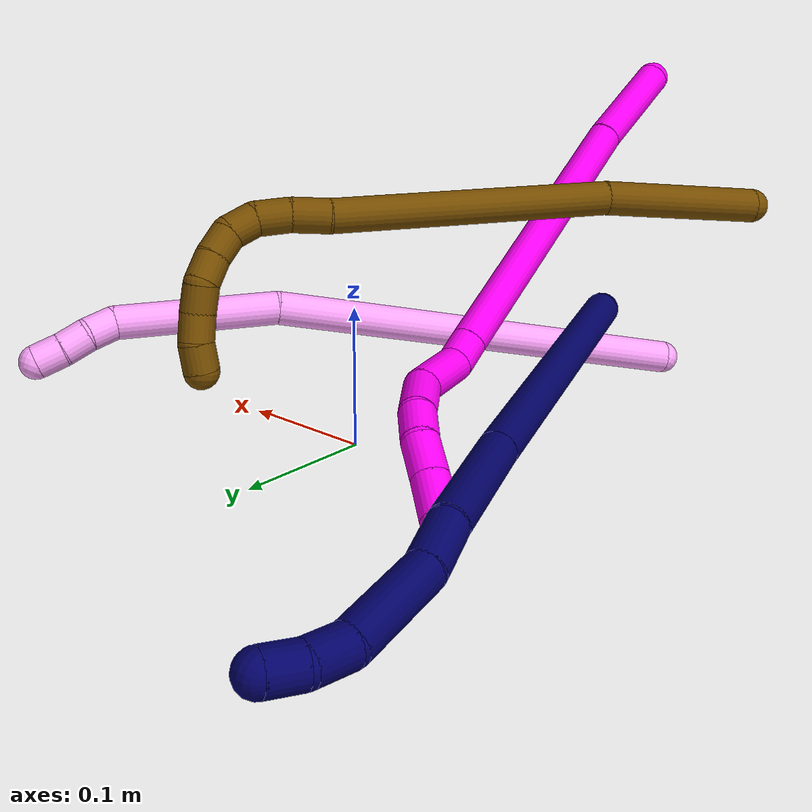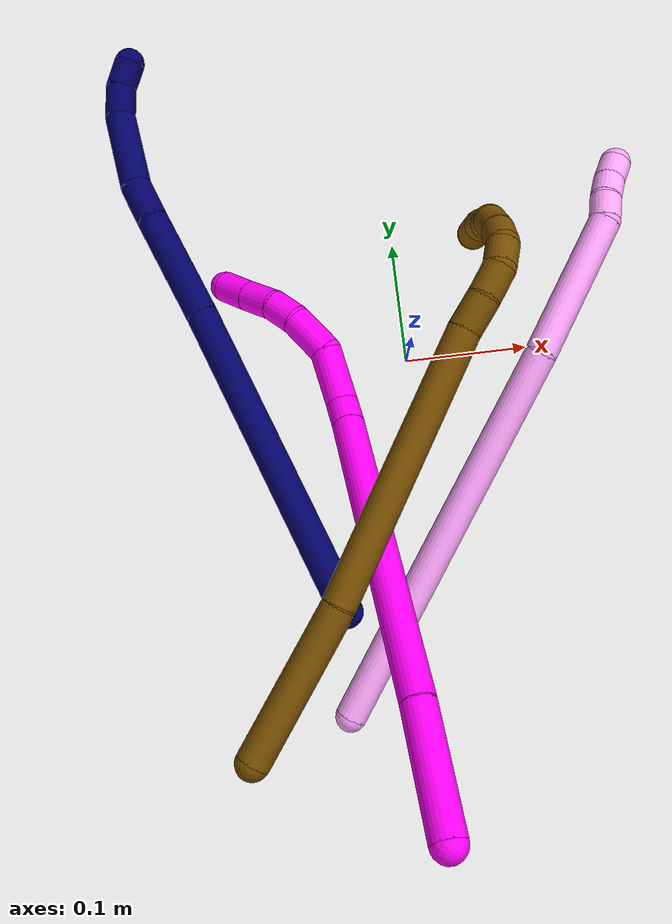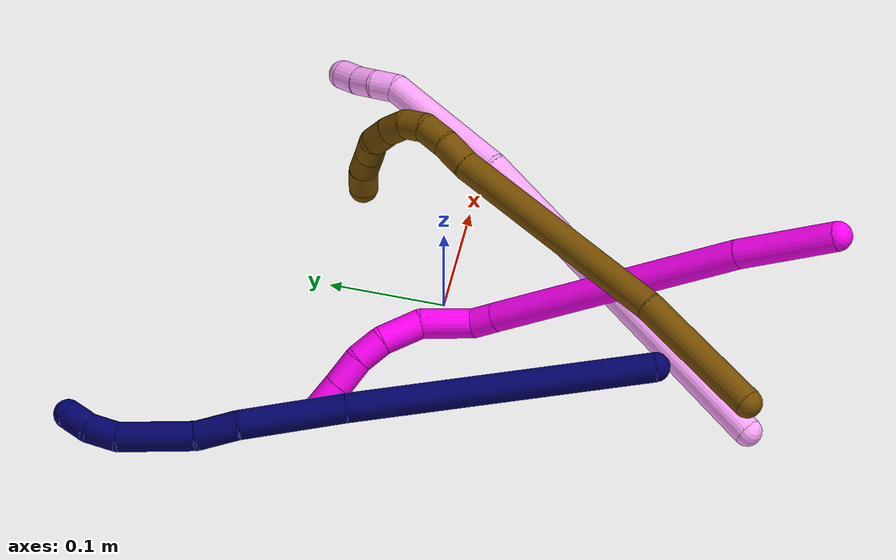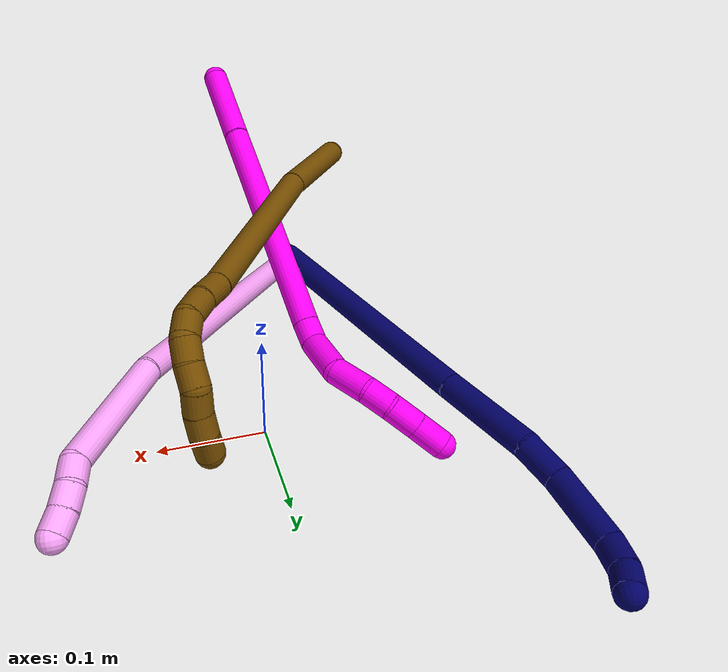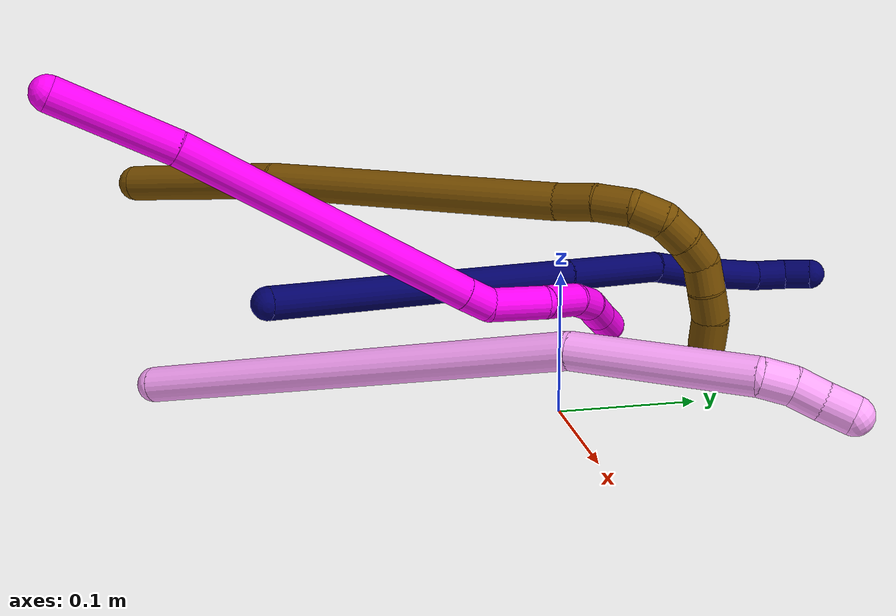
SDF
<sdf version="1.7">
 <world name="default">
  <model name="4">
   <static>0</static>
   <link name="4">
    <collision name="collision-cylinder-e_1_1_4">
     <pose>0.085787 0.127201 -0.044851 -1.90978 0.566498 -0.78037</pose>
     <geometry><cylinder><radius>0.0125</radius><length>0.319694</length></cylinder></geometry>
     <surface>
      <friction><ode><mu>1.16</mu><mu2>1.16</mu2><slip1>0</slip1><slip2>0</slip2></ode></friction>
      <contact><ode><kp>1e+06</kp><kd>1</kd><max_vel>0</max_vel><min_depth>0.001</min_depth></ode></contact>
     </surface>
    </collision>
    <visual name="visual-cylinder-e_1_1_4">
     <pose>0.085787 0.127201 -0.044851 -1.90978 0.566498 -0.78037</pose>
     <geometry><cylinder><radius>0.0125</radius><length>0.319694</length></cylinder></geometry>
     <material><ambient>1 0.65098 0.996078 1</ambient></material>
    </visual>
    <collision name="collision-cylinder-e_2_4_5">
     <pose>0.20318 0.296148 -0.118251 -2.17064 0.558559 -0.995765</pose>
     <geometry><cylinder><radius>0.0125</radius><length>0.119277</length></cylinder></geometry>
     <surface>
      <friction><ode><mu>1.16</mu><mu2>1.16</mu2><slip1>0</slip1><slip2>0</slip2></ode></friction>
      <contact><ode><kp>1e+06</kp><kd>1</kd><max_vel>0</max_vel><min_depth>0.001</min_depth></ode></contact>
     </surface>
    </collision>
    <visual name="visual-cylinder-e_2_4_5">
     <pose>0.20318 0.296148 -0.118251 -2.17064 0.558559 -0.995765</pose>
     <geometry><cylinder><radius>0.0125</radius><length>0.119277</length></cylinder></geometry>
     <material><ambient>1 0.65098 0.996078 1</ambient></material>
    </visual>
    <collision name="collision-cylinder-e_3_5_6">
     <pose>0.236983 0.344703 -0.154495 -2.41705 0.210656 -0.544057</pose>
     <geometry><cylinder><radius>0.0125</radius><length>0.021014</length></cylinder></geometry>
     <surface>
      <friction><ode><mu>1.16</mu><mu2>1.16</mu2><slip1>0</slip1><slip2>0</slip2></ode></friction>
      <contact><ode><kp>1e+06</kp><kd>1</kd><max_vel>0</max_vel><min_depth>0.001</min_depth></ode></contact>
     </surface>
    </collision>
    <visual name="visual-cylinder-e_3_5_6">
     <pose>0.236983 0.344703 -0.154495 -2.41705 0.210656 -0.544057</pose>
     <geometry><cylinder><radius>0.0125</radius><length>0.021014</length></cylinder></geometry>
     <material><ambient>1 0.65098 0.996078 1</ambient></material>
    </visual>
    <collision name="collision-cylinder-e_4_6_7">
     <pose>0.242465 0.35627 -0.170354 -2.61412 0.334543 -1.11764</pose>
     <geometry><cylinder><radius>0.0125</radius><length>0.020008</length></cylinder></geometry>
     <surface>
      <friction><ode><mu>1.16</mu><mu2>1.16</mu2><slip1>0</slip1><slip2>0</slip2></ode></friction>
      <contact><ode><kp>1e+06</kp><kd>1</kd><max_vel>0</max_vel><min_depth>0.001</min_depth></ode></contact>
     </surface>
    </collision>
    <visual name="visual-cylinder-e_4_6_7">
     <pose>0.242465 0.35627 -0.170354 -2.61412 0.334543 -1.11764</pose>
     <geometry><cylinder><radius>0.0125</radius><length>0.020008</length></cylinder></geometry>
     <material><ambient>1 0.65098 0.996078 1</ambient></material>
    </visual>
    <collision name="collision-cylinder-e_5_7_2">
     <pose>0.250063 0.366038 -0.186025 -2.55286 0.445857 -1.28411</pose>
     <geometry><cylinder><radius>0.0125</radius><length>0.020007</length></cylinder></geometry>
     <surface>
      <friction><ode><mu>1.16</mu><mu2>1.16</mu2><slip1>0</slip1><slip2>0</slip2></ode></friction>
      <contact><ode><kp>1e+06</kp><kd>1</kd><max_vel>0</max_vel><min_depth>0.001</min_depth></ode></contact>
     </surface>
    </collision>
    <visual name="visual-cylinder-e_5_7_2">
     <pose>0.250063 0.366038 -0.186025 -2.55286 0.445857 -1.28411</pose>
     <geometry><cylinder><radius>0.0125</radius><length>0.020007</length></cylinder></geometry>
     <material><ambient>1 0.65098 0.996078 1</ambient></material>
    </visual>
    <collision name="collision-sphere-2">
     <pose>0.254377 0.37105 -0.193531 0 -0 0</pose>
     <geometry><sphere><radius>0.0125</radius></sphere></geometry>
     <surface>
      <friction><ode><mu>1.16</mu><mu2>1.16</mu2><slip1>0</slip1><slip2>0</slip2></ode></friction>
      <contact><ode><kp>1e+06</kp><kd>1</kd><max_vel>0</max_vel><min_depth>0.001</min_depth></ode></contact>
     </surface>
    </collision>
    <visual name="visual-sphere-2">
     <pose>0.254377 0.37105 -0.193531 0 -0 0</pose>
     <geometry><sphere><radius>0.0125</radius></sphere></geometry>
     <material><ambient>1 0.65098 0.996078 1</ambient></material>
    </visual>
    <collision name="collision-sphere-7">
     <pose>0.24575 0.361026 -0.178519 0 -0 0</pose>
     <geometry><sphere><radius>0.0125</radius></sphere></geometry>
     <surface>
      <friction><ode><mu>1.16</mu><mu2>1.16</mu2><slip1>0</slip1><slip2>0</slip2></ode></friction>
      <contact><ode><kp>1e+06</kp><kd>1</kd><max_vel>0</max_vel><min_depth>0.001</min_depth></ode></contact>
     </surface>
    </collision>
    <visual name="visual-sphere-7">
     <pose>0.24575 0.361026 -0.178519 0 -0 0</pose>
     <geometry><sphere><radius>0.0125</radius></sphere></geometry>
     <material><ambient>1 0.65098 0.996078 1</ambient></material>
    </visual>
    <collision name="collision-sphere-6">
     <pose>0.23918 0.351513 -0.162189 0 -0 0</pose>
     <geometry><sphere><radius>0.0125</radius></sphere></geometry>
     <surface>
      <friction><ode><mu>1.16</mu><mu2>1.16</mu2><slip1>0</slip1><slip2>0</slip2></ode></friction>
      <contact><ode><kp>1e+06</kp><kd>1</kd><max_vel>0</max_vel><min_depth>0.001</min_depth></ode></contact>
     </surface>
    </collision>
    <visual name="visual-sphere-6">
     <pose>0.23918 0.351513 -0.162189 0 -0 0</pose>
     <geometry><sphere><radius>0.0125</radius></sphere></geometry>
     <material><ambient>1 0.65098 0.996078 1</ambient></material>
    </visual>
    <collision name="collision-sphere-5">
     <pose>0.234786 0.337893 -0.146801 0 -0 0</pose>
     <geometry><sphere><radius>0.0125</radius></sphere></geometry>
     <surface>
      <friction><ode><mu>1.16</mu><mu2>1.16</mu2><slip1>0</slip1><slip2>0</slip2></ode></friction>
      <contact><ode><kp>1e+06</kp><kd>1</kd><max_vel>0</max_vel><min_depth>0.001</min_depth></ode></contact>
     </surface>
    </collision>
    <visual name="visual-sphere-5">
     <pose>0.234786 0.337893 -0.146801 0 -0 0</pose>
     <geometry><sphere><radius>0.0125</radius></sphere></geometry>
     <material><ambient>1 0.65098 0.996078 1</ambient></material>
    </visual>
    <collision name="collision-sphere-1">
     <geometry><sphere><radius>0.0125</radius></sphere></geometry>
     <surface>
      <friction><ode><mu>1.16</mu><mu2>1.16</mu2><slip1>0</slip1><slip2>0</slip2></ode></friction>
      <contact><ode><kp>1e+06</kp><kd>1</kd><max_vel>0</max_vel><min_depth>0.001</min_depth></ode></contact>
     </surface>
    </collision>
    <visual name="visual-sphere-1">
     <geometry><sphere><radius>0.0125</radius></sphere></geometry>
     <material><ambient>1 0.65098 0.996078 1</ambient></material>
    </visual>
    <collision name="collision-sphere-4">
     <pose>0.171574 0.254403 -0.089701 0 -0 0</pose>
     <geometry><sphere><radius>0.0125</radius></sphere></geometry>
     <surface>
      <friction><ode><mu>1.16</mu><mu2>1.16</mu2><slip1>0</slip1><slip2>0</slip2></ode></friction>
      <contact><ode><kp>1e+06</kp><kd>1</kd><max_vel>0</max_vel><min_depth>0.001</min_depth></ode></contact>
     </surface>
    </collision>
    <visual name="visual-sphere-4">
     <pose>0.171574 0.254403 -0.089701 0 -0 0</pose>
     <geometry><sphere><radius>0.0125</radius></sphere></geometry>
     <material><ambient>1 0.65098 0.996078 1</ambient></material>
    </visual>
    <inertial>
     <pose>0.132989 0.195368 -0.07764 0 -0 0</pose>
     <mass>0.5</mass>
     <inertia>
      <ixx>-1e-06</ixx>
      <ixy>0</ixy>
      <ixz>0</ixz>
      <iyy>-0.001367</iyy>
      <iyz>0</iyz>
      <izz>-0.003843</izz>
     </inertia>
    </inertial>
   </link>
   <pose>-0.079752 -0.277793 0.012497 0.578198 -0.001595 -0.025624</pose>
  </model>
  <model name="7">
   <static>0</static>
   <link name="7">
    <collision name="collision-cylinder-e_1_1_4">
     <pose>0.048966 0.110241 0.046624 -1.17068 0.388321 -0.259214</pose>
     <geometry><cylinder><radius>0.0125</radius><length>0.258647</length></cylinder></geometry>
     <surface>
      <friction><ode><mu>1.16</mu><mu2>1.16</mu2><slip1>0</slip1><slip2>0</slip2></ode></friction>
      <contact><ode><kp>1e+06</kp><kd>1</kd><max_vel>0</max_vel><min_depth>0.001</min_depth></ode></contact>
     </surface>
    </collision>
    <visual name="visual-cylinder-e_1_1_4">
     <pose>0.048966 0.110241 0.046624 -1.17068 0.388321 -0.259214</pose>
     <geometry><cylinder><radius>0.0125</radius><length>0.258647</length></cylinder></geometry>
     <material><ambient>0.003922 0 0.403922 1</ambient></material>
    </visual>
    <collision name="collision-cylinder-e_2_4_5">
     <pose>0.114484 0.258699 0.110535 -1.14599 0.375833 -0.244164</pose>
     <geometry><cylinder><radius>0.0125</radius><length>0.090185</length></cylinder></geometry>
     <surface>
      <friction><ode><mu>1.16</mu><mu2>1.16</mu2><slip1>0</slip1><slip2>0</slip2></ode></friction>
      <contact><ode><kp>1e+06</kp><kd>1</kd><max_vel>0</max_vel><min_depth>0.001</min_depth></ode></contact>
     </surface>
    </collision>
    <visual name="visual-cylinder-e_2_4_5">
     <pose>0.114484 0.258699 0.110535 -1.14599 0.375833 -0.244164</pose>
     <geometry><cylinder><radius>0.0125</radius><length>0.090185</length></cylinder></geometry>
     <material><ambient>0.003922 0 0.403922 1</ambient></material>
    </visual>
    <collision name="collision-cylinder-e_3_5_6">
     <pose>0.134563 0.313689 0.13441 -1.19652 0.193353 -0.132007</pose>
     <geometry><cylinder><radius>0.0125</radius><length>0.036725</length></cylinder></geometry>
     <surface>
      <friction><ode><mu>1.16</mu><mu2>1.16</mu2><slip1>0</slip1><slip2>0</slip2></ode></friction>
      <contact><ode><kp>1e+06</kp><kd>1</kd><max_vel>0</max_vel><min_depth>0.001</min_depth></ode></contact>
     </surface>
    </collision>
    <visual name="visual-cylinder-e_3_5_6">
     <pose>0.134563 0.313689 0.13441 -1.19652 0.193353 -0.132007</pose>
     <geometry><cylinder><radius>0.0125</radius><length>0.036725</length></cylinder></geometry>
     <material><ambient>0.003922 0 0.403922 1</ambient></material>
    </visual>
    <collision name="collision-cylinder-e_4_6_7">
     <pose>0.148836 0.361335 0.146429 -1.39668 0.330195 -0.277927</pose>
     <geometry><cylinder><radius>0.0125</radius><length>0.066275</length></cylinder></geometry>
     <surface>
      <friction><ode><mu>1.16</mu><mu2>1.16</mu2><slip1>0</slip1><slip2>0</slip2></ode></friction>
      <contact><ode><kp>1e+06</kp><kd>1</kd><max_vel>0</max_vel><min_depth>0.001</min_depth></ode></contact>
     </surface>
    </collision>
    <visual name="visual-cylinder-e_4_6_7">
     <pose>0.148836 0.361335 0.146429 -1.39668 0.330195 -0.277927</pose>
     <geometry><cylinder><radius>0.0125</radius><length>0.066275</length></cylinder></geometry>
     <material><ambient>0.003922 0 0.403922 1</ambient></material>
    </visual>
    <collision name="collision-cylinder-e_5_7_8">
     <pose>0.165862 0.403578 0.150639 -1.67772 0.502356 -0.55641</pose>
     <geometry><cylinder><radius>0.0125</radius><length>0.026096</length></cylinder></geometry>
     <surface>
      <friction><ode><mu>1.16</mu><mu2>1.16</mu2><slip1>0</slip1><slip2>0</slip2></ode></friction>
      <contact><ode><kp>1e+06</kp><kd>1</kd><max_vel>0</max_vel><min_depth>0.001</min_depth></ode></contact>
     </surface>
    </collision>
    <visual name="visual-cylinder-e_5_7_8">
     <pose>0.165862 0.403578 0.150639 -1.67772 0.502356 -0.55641</pose>
     <geometry><cylinder><radius>0.0125</radius><length>0.026096</length></cylinder></geometry>
     <material><ambient>0.003922 0 0.403922 1</ambient></material>
    </visual>
    <collision name="collision-cylinder-e_6_8_2">
     <pose>0.177482 0.423633 0.145189 -2.02403 0.504799 -0.782424</pose>
     <geometry><cylinder><radius>0.0125</radius><length>0.022073</length></cylinder></geometry>
     <surface>
      <friction><ode><mu>1.16</mu><mu2>1.16</mu2><slip1>0</slip1><slip2>0</slip2></ode></friction>
      <contact><ode><kp>1e+06</kp><kd>1</kd><max_vel>0</max_vel><min_depth>0.001</min_depth></ode></contact>
     </surface>
    </collision>
    <visual name="visual-cylinder-e_6_8_2">
     <pose>0.177482 0.423633 0.145189 -2.02403 0.504799 -0.782424</pose>
     <geometry><cylinder><radius>0.0125</radius><length>0.022073</length></cylinder></geometry>
     <material><ambient>0.003922 0 0.403922 1</ambient></material>
    </visual>
    <collision name="collision-sphere-2">
     <pose>0.18282 0.432318 0.140959 0 -0 0</pose>
     <geometry><sphere><radius>0.0125</radius></sphere></geometry>
     <surface>
      <friction><ode><mu>1.16</mu><mu2>1.16</mu2><slip1>0</slip1><slip2>0</slip2></ode></friction>
      <contact><ode><kp>1e+06</kp><kd>1</kd><max_vel>0</max_vel><min_depth>0.001</min_depth></ode></contact>
     </surface>
    </collision>
    <visual name="visual-sphere-2">
     <pose>0.18282 0.432318 0.140959 0 -0 0</pose>
     <geometry><sphere><radius>0.0125</radius></sphere></geometry>
     <material><ambient>0.003922 0 0.403922 1</ambient></material>
    </visual>
    <collision name="collision-sphere-4">
     <pose>0.097933 0.220482 0.093247 0 -0 0</pose>
     <geometry><sphere><radius>0.0125</radius></sphere></geometry>
     <surface>
      <friction><ode><mu>1.16</mu><mu2>1.16</mu2><slip1>0</slip1><slip2>0</slip2></ode></friction>
      <contact><ode><kp>1e+06</kp><kd>1</kd><max_vel>0</max_vel><min_depth>0.001</min_depth></ode></contact>
     </surface>
    </collision>
    <visual name="visual-sphere-4">
     <pose>0.097933 0.220482 0.093247 0 -0 0</pose>
     <geometry><sphere><radius>0.0125</radius></sphere></geometry>
     <material><ambient>0.003922 0 0.403922 1</ambient></material>
    </visual>
    <collision name="collision-sphere-1">
     <geometry><sphere><radius>0.0125</radius></sphere></geometry>
     <surface>
      <friction><ode><mu>1.16</mu><mu2>1.16</mu2><slip1>0</slip1><slip2>0</slip2></ode></friction>
      <contact><ode><kp>1e+06</kp><kd>1</kd><max_vel>0</max_vel><min_depth>0.001</min_depth></ode></contact>
     </surface>
    </collision>
    <visual name="visual-sphere-1">
     <geometry><sphere><radius>0.0125</radius></sphere></geometry>
     <material><ambient>0.003922 0 0.403922 1</ambient></material>
    </visual>
    <collision name="collision-sphere-8">
     <pose>0.172144 0.414949 0.149419 0 -0 0</pose>
     <geometry><sphere><radius>0.0125</radius></sphere></geometry>
     <surface>
      <friction><ode><mu>1.16</mu><mu2>1.16</mu2><slip1>0</slip1><slip2>0</slip2></ode></friction>
      <contact><ode><kp>1e+06</kp><kd>1</kd><max_vel>0</max_vel><min_depth>0.001</min_depth></ode></contact>
     </surface>
    </collision>
    <visual name="visual-sphere-8">
     <pose>0.172144 0.414949 0.149419 0 -0 0</pose>
     <geometry><sphere><radius>0.0125</radius></sphere></geometry>
     <material><ambient>0.003922 0 0.403922 1</ambient></material>
    </visual>
    <collision name="collision-sphere-5">
     <pose>0.131035 0.296916 0.127822 0 -0 0</pose>
     <geometry><sphere><radius>0.0125</radius></sphere></geometry>
     <surface>
      <friction><ode><mu>1.16</mu><mu2>1.16</mu2><slip1>0</slip1><slip2>0</slip2></ode></friction>
      <contact><ode><kp>1e+06</kp><kd>1</kd><max_vel>0</max_vel><min_depth>0.001</min_depth></ode></contact>
     </surface>
    </collision>
    <visual name="visual-sphere-5">
     <pose>0.131035 0.296916 0.127822 0 -0 0</pose>
     <geometry><sphere><radius>0.0125</radius></sphere></geometry>
     <material><ambient>0.003922 0 0.403922 1</ambient></material>
    </visual>
    <collision name="collision-sphere-6">
     <pose>0.138092 0.330461 0.140998 0 -0 0</pose>
     <geometry><sphere><radius>0.0125</radius></sphere></geometry>
     <surface>
      <friction><ode><mu>1.16</mu><mu2>1.16</mu2><slip1>0</slip1><slip2>0</slip2></ode></friction>
      <contact><ode><kp>1e+06</kp><kd>1</kd><max_vel>0</max_vel><min_depth>0.001</min_depth></ode></contact>
     </surface>
    </collision>
    <visual name="visual-sphere-6">
     <pose>0.138092 0.330461 0.140998 0 -0 0</pose>
     <geometry><sphere><radius>0.0125</radius></sphere></geometry>
     <material><ambient>0.003922 0 0.403922 1</ambient></material>
    </visual>
    <collision name="collision-sphere-7">
     <pose>0.15958 0.392208 0.151859 0 -0 0</pose>
     <geometry><sphere><radius>0.0125</radius></sphere></geometry>
     <surface>
      <friction><ode><mu>1.16</mu><mu2>1.16</mu2><slip1>0</slip1><slip2>0</slip2></ode></friction>
      <contact><ode><kp>1e+06</kp><kd>1</kd><max_vel>0</max_vel><min_depth>0.001</min_depth></ode></contact>
     </surface>
    </collision>
    <visual name="visual-sphere-7">
     <pose>0.15958 0.392208 0.151859 0 -0 0</pose>
     <geometry><sphere><radius>0.0125</radius></sphere></geometry>
     <material><ambient>0.003922 0 0.403922 1</ambient></material>
    </visual>
    <inertial>
     <pose>0.092083 0.214389 0.087608 0 -0 0</pose>
     <mass>0.5</mass>
     <inertia>
      <ixx>0.001035</ixx>
      <ixy>0</ixy>
      <ixz>0</ixz>
      <iyy>0.000382</iyy>
      <iyz>0</iyz>
      <izz>-0.001901</izz>
     </inertia>
    </inertial>
   </link>
   <pose>-0.072596 -0.196084 0.06988 -1.57378 -1.09244 1.54804</pose>
  </model>
  <model name="10">
   <static>0</static>
   <link name="10">
    <collision name="collision-cylinder-e_1_1_4">
     <pose>-0.018188 0.015265 0.036994 -0.391353 -0.426575 0.085806</pose>
     <geometry><cylinder><radius>0.0125</radius><length>0.087918</length></cylinder></geometry>
     <surface>
      <friction><ode><mu>1.16</mu><mu2>1.16</mu2><slip1>0</slip1><slip2>0</slip2></ode></friction>
      <contact><ode><kp>1e+06</kp><kd>1</kd><max_vel>0</max_vel><min_depth>0.001</min_depth></ode></contact>
     </surface>
    </collision>
    <visual name="visual-cylinder-e_1_1_4">
     <pose>-0.018188 0.015265 0.036994 -0.391353 -0.426575 0.085806</pose>
     <geometry><cylinder><radius>0.0125</radius><length>0.087918</length></cylinder></geometry>
     <material><ambient>1 0 0.964706 1</ambient></material>
    </visual>
    <collision name="collision-cylinder-e_2_4_5">
     <pose>-0.082818 0.061856 0.173894 -0.303842 -0.417489 0.06484</pose>
     <geometry><cylinder><radius>0.0125</radius><length>0.229079</length></cylinder></geometry>
     <surface>
      <friction><ode><mu>1.16</mu><mu2>1.16</mu2><slip1>0</slip1><slip2>0</slip2></ode></friction>
      <contact><ode><kp>1e+06</kp><kd>1</kd><max_vel>0</max_vel><min_depth>0.001</min_depth></ode></contact>
     </surface>
    </collision>
    <visual name="visual-cylinder-e_2_4_5">
     <pose>-0.082818 0.061856 0.173894 -0.303842 -0.417489 0.06484</pose>
     <geometry><cylinder><radius>0.0125</radius><length>0.229079</length></cylinder></geometry>
     <material><ambient>1 0 0.964706 1</ambient></material>
    </visual>
    <collision name="collision-cylinder-e_3_5_6">
     <pose>-0.133288 0.096336 0.283404 -0.317401 -0.379165 0.061402</pose>
     <geometry><cylinder><radius>0.0125</radius><length>0.021765</length></cylinder></geometry>
     <surface>
      <friction><ode><mu>1.16</mu><mu2>1.16</mu2><slip1>0</slip1><slip2>0</slip2></ode></friction>
      <contact><ode><kp>1e+06</kp><kd>1</kd><max_vel>0</max_vel><min_depth>0.001</min_depth></ode></contact>
     </surface>
    </collision>
    <visual name="visual-cylinder-e_3_5_6">
     <pose>-0.133288 0.096336 0.283404 -0.317401 -0.379165 0.061402</pose>
     <geometry><cylinder><radius>0.0125</radius><length>0.021765</length></cylinder></geometry>
     <material><ambient>1 0 0.964706 1</ambient></material>
    </visual>
    <collision name="collision-cylinder-e_4_6_7">
     <pose>-0.141511 0.114135 0.308937 -0.743399 -0.191496 0.074843</pose>
     <geometry><cylinder><radius>0.0125</radius><length>0.04408</length></cylinder></geometry>
     <surface>
      <friction><ode><mu>1.16</mu><mu2>1.16</mu2><slip1>0</slip1><slip2>0</slip2></ode></friction>
      <contact><ode><kp>1e+06</kp><kd>1</kd><max_vel>0</max_vel><min_depth>0.001</min_depth></ode></contact>
     </surface>
    </collision>
    <visual name="visual-cylinder-e_4_6_7">
     <pose>-0.141511 0.114135 0.308937 -0.743399 -0.191496 0.074843</pose>
     <geometry><cylinder><radius>0.0125</radius><length>0.04408</length></cylinder></geometry>
     <material><ambient>1 0 0.964706 1</ambient></material>
    </visual>
    <collision name="collision-cylinder-e_5_7_8">
     <pose>-0.142638 0.136897 0.340462 -0.479931 0.172775 -0.042374</pose>
     <geometry><cylinder><radius>0.0125</radius><length>0.035696</length></cylinder></geometry>
     <surface>
      <friction><ode><mu>1.16</mu><mu2>1.16</mu2><slip1>0</slip1><slip2>0</slip2></ode></friction>
      <contact><ode><kp>1e+06</kp><kd>1</kd><max_vel>0</max_vel><min_depth>0.001</min_depth></ode></contact>
     </surface>
    </collision>
    <visual name="visual-cylinder-e_5_7_8">
     <pose>-0.142638 0.136897 0.340462 -0.479931 0.172775 -0.042374</pose>
     <geometry><cylinder><radius>0.0125</radius><length>0.035696</length></cylinder></geometry>
     <material><ambient>1 0 0.964706 1</ambient></material>
    </visual>
    <collision name="collision-cylinder-e_6_8_9">
     <pose>-0.137137 0.147349 0.368056 -0.192086 0.196442 -0.018986</pose>
     <geometry><cylinder><radius>0.0125</radius><length>0.024925</length></cylinder></geometry>
     <surface>
      <friction><ode><mu>1.16</mu><mu2>1.16</mu2><slip1>0</slip1><slip2>0</slip2></ode></friction>
      <contact><ode><kp>1e+06</kp><kd>1</kd><max_vel>0</max_vel><min_depth>0.001</min_depth></ode></contact>
     </surface>
    </collision>
    <visual name="visual-cylinder-e_6_8_9">
     <pose>-0.137137 0.147349 0.368056 -0.192086 0.196442 -0.018986</pose>
     <geometry><cylinder><radius>0.0125</radius><length>0.024925</length></cylinder></geometry>
     <material><ambient>1 0 0.964706 1</ambient></material>
    </visual>
    <collision name="collision-cylinder-e_7_9_10">
     <pose>-0.131664 0.148903 0.393638 0.057276 0.219824 0.006322</pose>
     <geometry><cylinder><radius>0.0125</radius><length>0.027884</length></cylinder></geometry>
     <surface>
      <friction><ode><mu>1.16</mu><mu2>1.16</mu2><slip1>0</slip1><slip2>0</slip2></ode></friction>
      <contact><ode><kp>1e+06</kp><kd>1</kd><max_vel>0</max_vel><min_depth>0.001</min_depth></ode></contact>
     </surface>
    </collision>
    <visual name="visual-cylinder-e_7_9_10">
     <pose>-0.131664 0.148903 0.393638 0.057276 0.219824 0.006322</pose>
     <geometry><cylinder><radius>0.0125</radius><length>0.027884</length></cylinder></geometry>
     <material><ambient>1 0 0.964706 1</ambient></material>
    </visual>
    <collision name="collision-cylinder-e_8_10_2">
     <pose>-0.125724 0.147656 0.421244 0.033378 0.203831 0.003414</pose>
     <geometry><cylinder><radius>0.0125</radius><length>0.028653</length></cylinder></geometry>
     <surface>
      <friction><ode><mu>1.16</mu><mu2>1.16</mu2><slip1>0</slip1><slip2>0</slip2></ode></friction>
      <contact><ode><kp>1e+06</kp><kd>1</kd><max_vel>0</max_vel><min_depth>0.001</min_depth></ode></contact>
     </surface>
    </collision>
    <visual name="visual-cylinder-e_8_10_2">
     <pose>-0.125724 0.147656 0.421244 0.033378 0.203831 0.003414</pose>
     <geometry><cylinder><radius>0.0125</radius><length>0.028653</length></cylinder></geometry>
     <material><ambient>1 0 0.964706 1</ambient></material>
    </visual>
    <collision name="collision-sphere-2">
     <pose>-0.122824 0.147188 0.435266 0 -0 0</pose>
     <geometry><sphere><radius>0.0125</radius></sphere></geometry>
     <surface>
      <friction><ode><mu>1.16</mu><mu2>1.16</mu2><slip1>0</slip1><slip2>0</slip2></ode></friction>
      <contact><ode><kp>1e+06</kp><kd>1</kd><max_vel>0</max_vel><min_depth>0.001</min_depth></ode></contact>
     </surface>
    </collision>
    <visual name="visual-sphere-2">
     <pose>-0.122824 0.147188 0.435266 0 -0 0</pose>
     <geometry><sphere><radius>0.0125</radius></sphere></geometry>
     <material><ambient>1 0 0.964706 1</ambient></material>
    </visual>
    <collision name="collision-sphere-10">
     <pose>-0.128624 0.148125 0.407222 0 -0 0</pose>
     <geometry><sphere><radius>0.0125</radius></sphere></geometry>
     <surface>
      <friction><ode><mu>1.16</mu><mu2>1.16</mu2><slip1>0</slip1><slip2>0</slip2></ode></friction>
      <contact><ode><kp>1e+06</kp><kd>1</kd><max_vel>0</max_vel><min_depth>0.001</min_depth></ode></contact>
     </surface>
    </collision>
    <visual name="visual-sphere-10">
     <pose>-0.128624 0.148125 0.407222 0 -0 0</pose>
     <geometry><sphere><radius>0.0125</radius></sphere></geometry>
     <material><ambient>1 0 0.964706 1</ambient></material>
    </visual>
    <collision name="collision-sphere-9">
     <pose>-0.134705 0.149682 0.380054 0 -0 0</pose>
     <geometry><sphere><radius>0.0125</radius></sphere></geometry>
     <surface>
      <friction><ode><mu>1.16</mu><mu2>1.16</mu2><slip1>0</slip1><slip2>0</slip2></ode></friction>
      <contact><ode><kp>1e+06</kp><kd>1</kd><max_vel>0</max_vel><min_depth>0.001</min_depth></ode></contact>
     </surface>
    </collision>
    <visual name="visual-sphere-9">
     <pose>-0.134705 0.149682 0.380054 0 -0 0</pose>
     <geometry><sphere><radius>0.0125</radius></sphere></geometry>
     <material><ambient>1 0 0.964706 1</ambient></material>
    </visual>
    <collision name="collision-sphere-4">
     <pose>-0.036376 0.03053 0.073988 0 -0 0</pose>
     <geometry><sphere><radius>0.0125</radius></sphere></geometry>
     <surface>
      <friction><ode><mu>1.16</mu><mu2>1.16</mu2><slip1>0</slip1><slip2>0</slip2></ode></friction>
      <contact><ode><kp>1e+06</kp><kd>1</kd><max_vel>0</max_vel><min_depth>0.001</min_depth></ode></contact>
     </surface>
    </collision>
    <visual name="visual-sphere-4">
     <pose>-0.036376 0.03053 0.073988 0 -0 0</pose>
     <geometry><sphere><radius>0.0125</radius></sphere></geometry>
     <material><ambient>1 0 0.964706 1</ambient></material>
    </visual>
    <collision name="collision-sphere-1">
     <geometry><sphere><radius>0.0125</radius></sphere></geometry>
     <surface>
      <friction><ode><mu>1.16</mu><mu2>1.16</mu2><slip1>0</slip1><slip2>0</slip2></ode></friction>
      <contact><ode><kp>1e+06</kp><kd>1</kd><max_vel>0</max_vel><min_depth>0.001</min_depth></ode></contact>
     </surface>
    </collision>
    <visual name="visual-sphere-1">
     <geometry><sphere><radius>0.0125</radius></sphere></geometry>
     <material><ambient>1 0 0.964706 1</ambient></material>
    </visual>
    <collision name="collision-sphere-8">
     <pose>-0.13957 0.145015 0.356058 0 -0 0</pose>
     <geometry><sphere><radius>0.0125</radius></sphere></geometry>
     <surface>
      <friction><ode><mu>1.16</mu><mu2>1.16</mu2><slip1>0</slip1><slip2>0</slip2></ode></friction>
      <contact><ode><kp>1e+06</kp><kd>1</kd><max_vel>0</max_vel><min_depth>0.001</min_depth></ode></contact>
     </surface>
    </collision>
    <visual name="visual-sphere-8">
     <pose>-0.13957 0.145015 0.356058 0 -0 0</pose>
     <geometry><sphere><radius>0.0125</radius></sphere></geometry>
     <material><ambient>1 0 0.964706 1</ambient></material>
    </visual>
    <collision name="collision-sphere-5">
     <pose>-0.12926 0.093181 0.273799 0 -0 0</pose>
     <geometry><sphere><radius>0.0125</radius></sphere></geometry>
     <surface>
      <friction><ode><mu>1.16</mu><mu2>1.16</mu2><slip1>0</slip1><slip2>0</slip2></ode></friction>
      <contact><ode><kp>1e+06</kp><kd>1</kd><max_vel>0</max_vel><min_depth>0.001</min_depth></ode></contact>
     </surface>
    </collision>
    <visual name="visual-sphere-5">
     <pose>-0.12926 0.093181 0.273799 0 -0 0</pose>
     <geometry><sphere><radius>0.0125</radius></sphere></geometry>
     <material><ambient>1 0 0.964706 1</ambient></material>
    </visual>
    <collision name="collision-sphere-6">
     <pose>-0.137317 0.099492 0.293009 0 -0 0</pose>
     <geometry><sphere><radius>0.0125</radius></sphere></geometry>
     <surface>
      <friction><ode><mu>1.16</mu><mu2>1.16</mu2><slip1>0</slip1><slip2>0</slip2></ode></friction>
      <contact><ode><kp>1e+06</kp><kd>1</kd><max_vel>0</max_vel><min_depth>0.001</min_depth></ode></contact>
     </surface>
    </collision>
    <visual name="visual-sphere-6">
     <pose>-0.137317 0.099492 0.293009 0 -0 0</pose>
     <geometry><sphere><radius>0.0125</radius></sphere></geometry>
     <material><ambient>1 0 0.964706 1</ambient></material>
    </visual>
    <collision name="collision-sphere-7">
     <pose>-0.145706 0.128779 0.324866 0 -0 0</pose>
     <geometry><sphere><radius>0.0125</radius></sphere></geometry>
     <surface>
      <friction><ode><mu>1.16</mu><mu2>1.16</mu2><slip1>0</slip1><slip2>0</slip2></ode></friction>
      <contact><ode><kp>1e+06</kp><kd>1</kd><max_vel>0</max_vel><min_depth>0.001</min_depth></ode></contact>
     </surface>
    </collision>
    <visual name="visual-sphere-7">
     <pose>-0.145706 0.128779 0.324866 0 -0 0</pose>
     <geometry><sphere><radius>0.0125</radius></sphere></geometry>
     <material><ambient>1 0 0.964706 1</ambient></material>
    </visual>
    <inertial>
     <pose>-0.090987 0.079164 0.214494 0 -0 0</pose>
     <mass>0.5</mass>
     <inertia>
      <ixx>0.001055</ixx>
      <ixy>0</ixy>
      <ixz>0</ixz>
      <iyy>0.001124</iyy>
      <iyz>0</iyz>
      <izz>0.000162</izz>
     </inertia>
    </inertial>
   </link>
   <pose>-0.025921 -0.331615 0.229351 2.29433 -0.428908 -2.77629</pose>
  </model>
  <model name="12">
   <static>0</static>
   <link name="12">
    <collision name="collision-cylinder-e_1_1_4">
     <pose>0.033278 0.04896 -0.000847 -1.5881 0.596909 -0.606707</pose>
     <geometry><cylinder><radius>0.0125</radius><length>0.11841</length></cylinder></geometry>
     <surface>
      <friction><ode><mu>1.16</mu><mu2>1.16</mu2><slip1>0</slip1><slip2>0</slip2></ode></friction>
      <contact><ode><kp>1e+06</kp><kd>1</kd><max_vel>0</max_vel><min_depth>0.001</min_depth></ode></contact>
     </surface>
    </collision>
    <visual name="visual-cylinder-e_1_1_4">
     <pose>0.033278 0.04896 -0.000847 -1.5881 0.596909 -0.606707</pose>
     <geometry><cylinder><radius>0.0125</radius><length>0.11841</length></cylinder></geometry>
     <material><ambient>0.466667 0.301961 0 1</ambient></material>
    </visual>
    <collision name="collision-cylinder-e_2_4_5">
     <pose>0.118719 0.187209 -0.013677 -1.70419 0.524834 -0.595852</pose>
     <geometry><cylinder><radius>0.0125</radius><length>0.208203</length></cylinder></geometry>
     <surface>
      <friction><ode><mu>1.16</mu><mu2>1.16</mu2><slip1>0</slip1><slip2>0</slip2></ode></friction>
      <contact><ode><kp>1e+06</kp><kd>1</kd><max_vel>0</max_vel><min_depth>0.001</min_depth></ode></contact>
     </surface>
    </collision>
    <visual name="visual-cylinder-e_2_4_5">
     <pose>0.118719 0.187209 -0.013677 -1.70419 0.524834 -0.595852</pose>
     <geometry><cylinder><radius>0.0125</radius><length>0.208203</length></cylinder></geometry>
     <material><ambient>0.466667 0.301961 0 1</ambient></material>
    </visual>
    <collision name="collision-cylinder-e_3_5_6">
     <pose>0.178957 0.287524 -0.026094 -1.61019 0.631808 -0.655453</pose>
     <geometry><cylinder><radius>0.0125</radius><length>0.027347</length></cylinder></geometry>
     <surface>
      <friction><ode><mu>1.16</mu><mu2>1.16</mu2><slip1>0</slip1><slip2>0</slip2></ode></friction>
      <contact><ode><kp>1e+06</kp><kd>1</kd><max_vel>0</max_vel><min_depth>0.001</min_depth></ode></contact>
     </surface>
    </collision>
    <visual name="visual-cylinder-e_3_5_6">
     <pose>0.178957 0.287524 -0.026094 -1.61019 0.631808 -0.655453</pose>
     <geometry><cylinder><radius>0.0125</radius><length>0.027347</length></cylinder></geometry>
     <material><ambient>0.466667 0.301961 0 1</ambient></material>
    </visual>
    <collision name="collision-cylinder-e_4_6_7">
     <pose>0.193807 0.308753 -0.028691 -1.7797 0.576052 -0.701106</pose>
     <geometry><cylinder><radius>0.0125</radius><length>0.024874</length></cylinder></geometry>
     <surface>
      <friction><ode><mu>1.16</mu><mu2>1.16</mu2><slip1>0</slip1><slip2>0</slip2></ode></friction>
      <contact><ode><kp>1e+06</kp><kd>1</kd><max_vel>0</max_vel><min_depth>0.001</min_depth></ode></contact>
     </surface>
    </collision>
    <visual name="visual-cylinder-e_4_6_7">
     <pose>0.193807 0.308753 -0.028691 -1.7797 0.576052 -0.701106</pose>
     <geometry><cylinder><radius>0.0125</radius><length>0.024874</length></cylinder></geometry>
     <material><ambient>0.466667 0.301961 0 1</ambient></material>
    </visual>
    <collision name="collision-cylinder-e_5_7_8">
     <pose>0.203364 0.327685 -0.035882 -2.09338 0.269523 -0.460795</pose>
     <geometry><cylinder><radius>0.0125</radius><length>0.020902</length></cylinder></geometry>
     <surface>
      <friction><ode><mu>1.16</mu><mu2>1.16</mu2><slip1>0</slip1><slip2>0</slip2></ode></friction>
      <contact><ode><kp>1e+06</kp><kd>1</kd><max_vel>0</max_vel><min_depth>0.001</min_depth></ode></contact>
     </surface>
    </collision>
    <visual name="visual-cylinder-e_5_7_8">
     <pose>0.203364 0.327685 -0.035882 -2.09338 0.269523 -0.460795</pose>
     <geometry><cylinder><radius>0.0125</radius><length>0.020902</length></cylinder></geometry>
     <material><ambient>0.466667 0.301961 0 1</ambient></material>
    </visual>
    <collision name="collision-cylinder-e_6_8_9">
     <pose>0.206009 0.342786 -0.048767 -2.46019 -0.013609 0.038382</pose>
     <geometry><cylinder><radius>0.0125</radius><length>0.020233</length></cylinder></geometry>
     <surface>
      <friction><ode><mu>1.16</mu><mu2>1.16</mu2><slip1>0</slip1><slip2>0</slip2></ode></friction>
      <contact><ode><kp>1e+06</kp><kd>1</kd><max_vel>0</max_vel><min_depth>0.001</min_depth></ode></contact>
     </surface>
    </collision>
    <visual name="visual-cylinder-e_6_8_9">
     <pose>0.206009 0.342786 -0.048767 -2.46019 -0.013609 0.038382</pose>
     <geometry><cylinder><radius>0.0125</radius><length>0.020233</length></cylinder></geometry>
     <material><ambient>0.466667 0.301961 0 1</ambient></material>
    </visual>
    <collision name="collision-cylinder-e_7_9_10">
     <pose>0.204539 0.354324 -0.065098 -2.59409 -0.133476 0.467355</pose>
     <geometry><cylinder><radius>0.0125</radius><length>0.020028</length></cylinder></geometry>
     <surface>
      <friction><ode><mu>1.16</mu><mu2>1.16</mu2><slip1>0</slip1><slip2>0</slip2></ode></friction>
      <contact><ode><kp>1e+06</kp><kd>1</kd><max_vel>0</max_vel><min_depth>0.001</min_depth></ode></contact>
     </surface>
    </collision>
    <visual name="visual-cylinder-e_7_9_10">
     <pose>0.204539 0.354324 -0.065098 -2.59409 -0.133476 0.467355</pose>
     <geometry><cylinder><radius>0.0125</radius><length>0.020028</length></cylinder></geometry>
     <material><ambient>0.466667 0.301961 0 1</ambient></material>
    </visual>
    <collision name="collision-cylinder-e_8_10_11">
     <pose>0.203335 0.360191 -0.083548 -3.07151 0.012825 -0.361862</pose>
     <geometry><cylinder><radius>0.0125</radius><length>0.020002</length></cylinder></geometry>
     <surface>
      <friction><ode><mu>1.16</mu><mu2>1.16</mu2><slip1>0</slip1><slip2>0</slip2></ode></friction>
      <contact><ode><kp>1e+06</kp><kd>1</kd><max_vel>0</max_vel><min_depth>0.001</min_depth></ode></contact>
     </surface>
    </collision>
    <visual name="visual-cylinder-e_8_10_11">
     <pose>0.203335 0.360191 -0.083548 -3.07151 0.012825 -0.361862</pose>
     <geometry><cylinder><radius>0.0125</radius><length>0.020002</length></cylinder></geometry>
     <material><ambient>0.466667 0.301961 0 1</ambient></material>
    </visual>
    <collision name="collision-cylinder-e_9_11_12">
     <pose>0.202181 0.361875 -0.103392 -3.04226 -0.128528 1.82617</pose>
     <geometry><cylinder><radius>0.0125</radius><length>0.02</length></cylinder></geometry>
     <surface>
      <friction><ode><mu>1.16</mu><mu2>1.16</mu2><slip1>0</slip1><slip2>0</slip2></ode></friction>
      <contact><ode><kp>1e+06</kp><kd>1</kd><max_vel>0</max_vel><min_depth>0.001</min_depth></ode></contact>
     </surface>
    </collision>
    <visual name="visual-cylinder-e_9_11_12">
     <pose>0.202181 0.361875 -0.103392 -3.04226 -0.128528 1.82617</pose>
     <geometry><cylinder><radius>0.0125</radius><length>0.02</length></cylinder></geometry>
     <material><ambient>0.466667 0.301961 0 1</ambient></material>
    </visual>
    <collision name="collision-cylinder-e_10_12_2">
     <pose>0.199121 0.361119 -0.122947 2.96393 -0.178769 -1.57702</pose>
     <geometry><cylinder><radius>0.0125</radius><length>0.020001</length></cylinder></geometry>
     <surface>
      <friction><ode><mu>1.16</mu><mu2>1.16</mu2><slip1>0</slip1><slip2>0</slip2></ode></friction>
      <contact><ode><kp>1e+06</kp><kd>1</kd><max_vel>0</max_vel><min_depth>0.001</min_depth></ode></contact>
     </surface>
    </collision>
    <visual name="visual-cylinder-e_10_12_2">
     <pose>0.199121 0.361119 -0.122947 2.96393 -0.178769 -1.57702</pose>
     <geometry><cylinder><radius>0.0125</radius><length>0.020001</length></cylinder></geometry>
     <material><ambient>0.466667 0.301961 0 1</ambient></material>
    </visual>
    <collision name="collision-sphere-2">
     <pose>0.197343 0.35938 -0.132633 0 -0 0</pose>
     <geometry><sphere><radius>0.0125</radius></sphere></geometry>
     <surface>
      <friction><ode><mu>1.16</mu><mu2>1.16</mu2><slip1>0</slip1><slip2>0</slip2></ode></friction>
      <contact><ode><kp>1e+06</kp><kd>1</kd><max_vel>0</max_vel><min_depth>0.001</min_depth></ode></contact>
     </surface>
    </collision>
    <visual name="visual-sphere-2">
     <pose>0.197343 0.35938 -0.132633 0 -0 0</pose>
     <geometry><sphere><radius>0.0125</radius></sphere></geometry>
     <material><ambient>0.466667 0.301961 0 1</ambient></material>
    </visual>
    <collision name="collision-sphere-12">
     <pose>0.200899 0.362858 -0.113261 0 -0 0</pose>
     <geometry><sphere><radius>0.0125</radius></sphere></geometry>
     <surface>
      <friction><ode><mu>1.16</mu><mu2>1.16</mu2><slip1>0</slip1><slip2>0</slip2></ode></friction>
      <contact><ode><kp>1e+06</kp><kd>1</kd><max_vel>0</max_vel><min_depth>0.001</min_depth></ode></contact>
     </surface>
    </collision>
    <visual name="visual-sphere-12">
     <pose>0.200899 0.362858 -0.113261 0 -0 0</pose>
     <geometry><sphere><radius>0.0125</radius></sphere></geometry>
     <material><ambient>0.466667 0.301961 0 1</ambient></material>
    </visual>
    <collision name="collision-sphere-11">
     <pose>0.203463 0.360891 -0.093524 0 -0 0</pose>
     <geometry><sphere><radius>0.0125</radius></sphere></geometry>
     <surface>
      <friction><ode><mu>1.16</mu><mu2>1.16</mu2><slip1>0</slip1><slip2>0</slip2></ode></friction>
      <contact><ode><kp>1e+06</kp><kd>1</kd><max_vel>0</max_vel><min_depth>0.001</min_depth></ode></contact>
     </surface>
    </collision>
    <visual name="visual-sphere-11">
     <pose>0.203463 0.360891 -0.093524 0 -0 0</pose>
     <geometry><sphere><radius>0.0125</radius></sphere></geometry>
     <material><ambient>0.466667 0.301961 0 1</ambient></material>
    </visual>
    <collision name="collision-sphere-10">
     <pose>0.203206 0.359491 -0.073572 0 -0 0</pose>
     <geometry><sphere><radius>0.0125</radius></sphere></geometry>
     <surface>
      <friction><ode><mu>1.16</mu><mu2>1.16</mu2><slip1>0</slip1><slip2>0</slip2></ode></friction>
      <contact><ode><kp>1e+06</kp><kd>1</kd><max_vel>0</max_vel><min_depth>0.001</min_depth></ode></contact>
     </surface>
    </collision>
    <visual name="visual-sphere-10">
     <pose>0.203206 0.359491 -0.073572 0 -0 0</pose>
     <geometry><sphere><radius>0.0125</radius></sphere></geometry>
     <material><ambient>0.466667 0.301961 0 1</ambient></material>
    </visual>
    <collision name="collision-sphere-9">
     <pose>0.205872 0.349158 -0.056624 0 -0 0</pose>
     <geometry><sphere><radius>0.0125</radius></sphere></geometry>
     <surface>
      <friction><ode><mu>1.16</mu><mu2>1.16</mu2><slip1>0</slip1><slip2>0</slip2></ode></friction>
      <contact><ode><kp>1e+06</kp><kd>1</kd><max_vel>0</max_vel><min_depth>0.001</min_depth></ode></contact>
     </surface>
    </collision>
    <visual name="visual-sphere-9">
     <pose>0.205872 0.349158 -0.056624 0 -0 0</pose>
     <geometry><sphere><radius>0.0125</radius></sphere></geometry>
     <material><ambient>0.466667 0.301961 0 1</ambient></material>
    </visual>
    <collision name="collision-sphere-4">
     <pose>0.066557 0.097919 -0.001695 0 -0 0</pose>
     <geometry><sphere><radius>0.0125</radius></sphere></geometry>
     <surface>
      <friction><ode><mu>1.16</mu><mu2>1.16</mu2><slip1>0</slip1><slip2>0</slip2></ode></friction>
      <contact><ode><kp>1e+06</kp><kd>1</kd><max_vel>0</max_vel><min_depth>0.001</min_depth></ode></contact>
     </surface>
    </collision>
    <visual name="visual-sphere-4">
     <pose>0.066557 0.097919 -0.001695 0 -0 0</pose>
     <geometry><sphere><radius>0.0125</radius></sphere></geometry>
     <material><ambient>0.466667 0.301961 0 1</ambient></material>
    </visual>
    <collision name="collision-sphere-1">
     <geometry><sphere><radius>0.0125</radius></sphere></geometry>
     <surface>
      <friction><ode><mu>1.16</mu><mu2>1.16</mu2><slip1>0</slip1><slip2>0</slip2></ode></friction>
      <contact><ode><kp>1e+06</kp><kd>1</kd><max_vel>0</max_vel><min_depth>0.001</min_depth></ode></contact>
     </surface>
    </collision>
    <visual name="visual-sphere-1">
     <geometry><sphere><radius>0.0125</radius></sphere></geometry>
     <material><ambient>0.466667 0.301961 0 1</ambient></material>
    </visual>
    <collision name="collision-sphere-8">
     <pose>0.206147 0.336414 -0.04091 0 -0 0</pose>
     <geometry><sphere><radius>0.0125</radius></sphere></geometry>
     <surface>
      <friction><ode><mu>1.16</mu><mu2>1.16</mu2><slip1>0</slip1><slip2>0</slip2></ode></friction>
      <contact><ode><kp>1e+06</kp><kd>1</kd><max_vel>0</max_vel><min_depth>0.001</min_depth></ode></contact>
     </surface>
    </collision>
    <visual name="visual-sphere-8">
     <pose>0.206147 0.336414 -0.04091 0 -0 0</pose>
     <geometry><sphere><radius>0.0125</radius></sphere></geometry>
     <material><ambient>0.466667 0.301961 0 1</ambient></material>
    </visual>
    <collision name="collision-sphere-5">
     <pose>0.170881 0.276499 -0.025659 0 -0 0</pose>
     <geometry><sphere><radius>0.0125</radius></sphere></geometry>
     <surface>
      <friction><ode><mu>1.16</mu><mu2>1.16</mu2><slip1>0</slip1><slip2>0</slip2></ode></friction>
      <contact><ode><kp>1e+06</kp><kd>1</kd><max_vel>0</max_vel><min_depth>0.001</min_depth></ode></contact>
     </surface>
    </collision>
    <visual name="visual-sphere-5">
     <pose>0.170881 0.276499 -0.025659 0 -0 0</pose>
     <geometry><sphere><radius>0.0125</radius></sphere></geometry>
     <material><ambient>0.466667 0.301961 0 1</ambient></material>
    </visual>
    <collision name="collision-sphere-6">
     <pose>0.187032 0.29855 -0.026528 0 -0 0</pose>
     <geometry><sphere><radius>0.0125</radius></sphere></geometry>
     <surface>
      <friction><ode><mu>1.16</mu><mu2>1.16</mu2><slip1>0</slip1><slip2>0</slip2></ode></friction>
      <contact><ode><kp>1e+06</kp><kd>1</kd><max_vel>0</max_vel><min_depth>0.001</min_depth></ode></contact>
     </surface>
    </collision>
    <visual name="visual-sphere-6">
     <pose>0.187032 0.29855 -0.026528 0 -0 0</pose>
     <geometry><sphere><radius>0.0125</radius></sphere></geometry>
     <material><ambient>0.466667 0.301961 0 1</ambient></material>
    </visual>
    <collision name="collision-sphere-7">
     <pose>0.200581 0.318956 -0.030854 0 -0 0</pose>
     <geometry><sphere><radius>0.0125</radius></sphere></geometry>
     <surface>
      <friction><ode><mu>1.16</mu><mu2>1.16</mu2><slip1>0</slip1><slip2>0</slip2></ode></friction>
      <contact><ode><kp>1e+06</kp><kd>1</kd><max_vel>0</max_vel><min_depth>0.001</min_depth></ode></contact>
     </surface>
    </collision>
    <visual name="visual-sphere-7">
     <pose>0.200581 0.318956 -0.030854 0 -0 0</pose>
     <geometry><sphere><radius>0.0125</radius></sphere></geometry>
     <material><ambient>0.466667 0.301961 0 1</ambient></material>
    </visual>
    <inertial>
     <pose>0.125963 0.205728 -0.027227 0 -0 0</pose>
     <mass>0.5</mass>
     <inertia>
      <ixx>0.000226</ixx>
      <ixy>0</ixy>
      <ixz>0</ixz>
      <iyy>-0.000242</iyy>
      <iyz>0</iyz>
      <izz>-0.001252</izz>
     </inertia>
    </inertial>
   </link>
   <pose>-0.145339 -0.284225 0.146383 0.136081 0.005205 -0.026663</pose>
  </model>
 </world>
</sdf>
